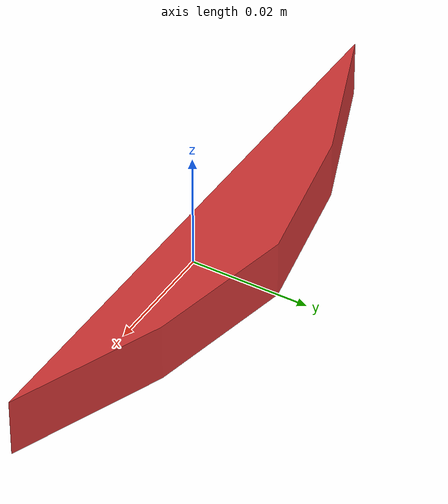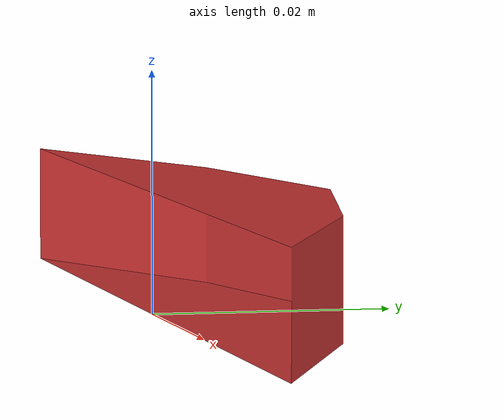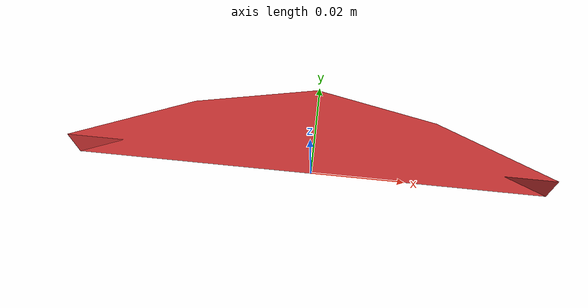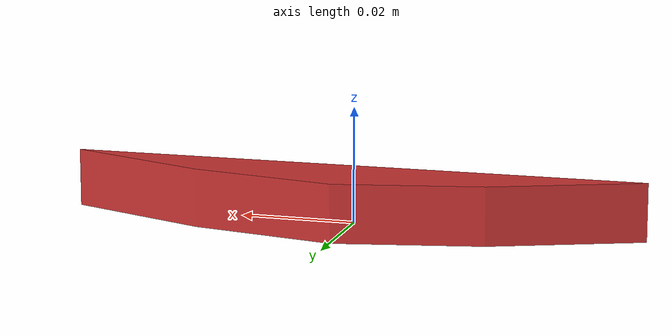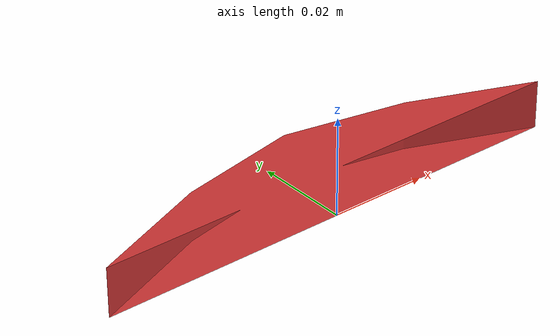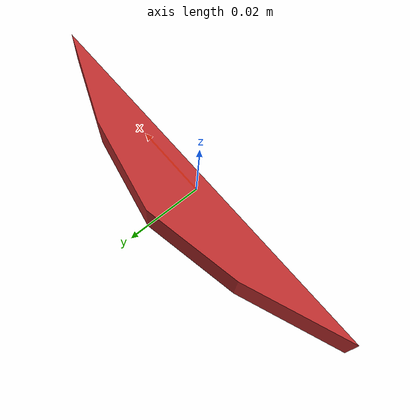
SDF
<?xml version="1.0"?>
<sdf version="1.7">
  <model name="banana_variant">
    <link name="banana_variant_link">
      <inertial>
        <mass>0.1</mass>
        <inertia>
          <ixx>0.0002</ixx>
          <iyy>0.001</iyy>
          <izz>0.001</izz>
          <ixy>0.0</ixy>
          <ixz>0.0</ixz>
          <iyz>0.0</iyz>
        </inertia>
      </inertial>
      <visual name="banana_variant_visual">
        <geometry>
          <mesh>
            <uri>banana.obj</uri>
            <scale>0.05 0.05 0.05</scale>
          </mesh>
        </geometry>
        <material>
          <diffuse>0.8 0.2 0.2 1</diffuse>
          <ambient>0.3 0.1 0.1 1</ambient>
        </material>
      </visual>
    </link>
  </model>
</sdf>
